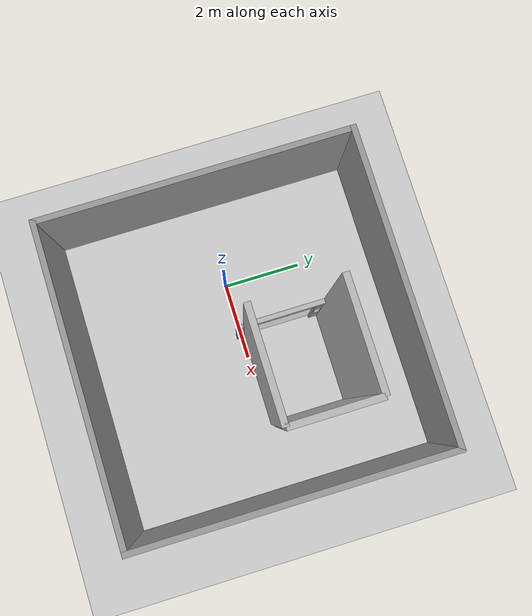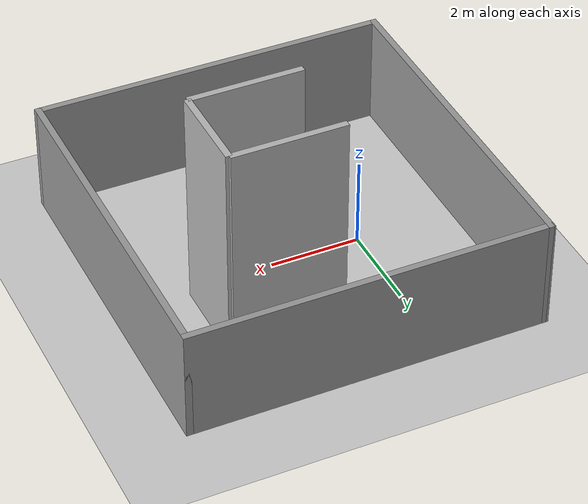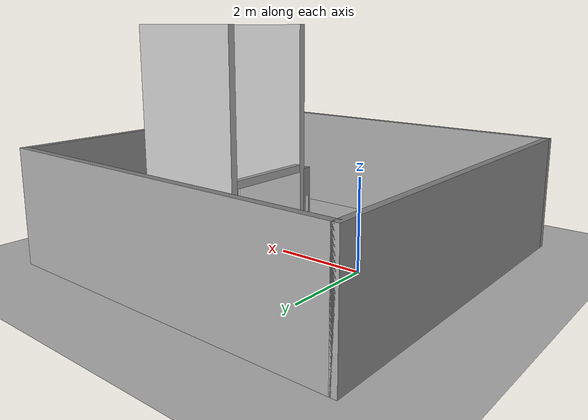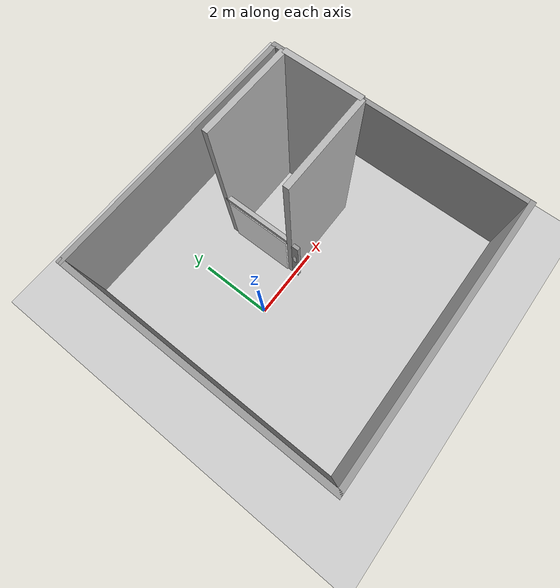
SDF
<sdf version="1.6">
 <world name="default">
  <light name="sun" type="directional">
   <pose>0 0 10 0 -0 0</pose>
   <diffuse>0.8 0.8 0.8 1</diffuse>
   <specular>0.2 0.2 0.2 1</specular>
   <attenuation>
    <range>1000</range>
    <constant>0.9</constant>
    <linear>0.01</linear>
    <quadratic>0.001</quadratic>
   </attenuation>
   <direction>-0.5 0.1 -0.9</direction>
  </light>
  <model name="ground_plane">
   <static>1</static>
   <link name="link">
    <collision name="collision">
     <geometry><plane><normal>0 0 1</normal><size>100 100</size></plane></geometry>
     <surface><friction><ode><mu>100</mu><mu2>50</mu2></ode></friction></surface>
    </collision>
    <visual name="visual">
     <cast_shadows>0</cast_shadows>
     <geometry><plane><normal>0 0 1</normal><size>100 100</size></plane></geometry>
     <material>
      <script><uri>file://media/materials/scripts/gazebo.material</uri><name>Gazebo/Grey</name></script>
     </material>
    </visual>
   </link>
  </model>
  <gravity>0 0 -9.8</gravity>
  <magnetic_field>6e-06 2.3e-05 -4.2e-05</magnetic_field>
  <atmosphere type="adiabatic"/>
  <physics name="default_physics" default="0" type="ode">
   <max_step_size>0.001</max_step_size>
   <real_time_factor>1</real_time_factor>
   <real_time_update_rate>1000</real_time_update_rate>
  </physics>
  <scene><ambient>0.4 0.4 0.4 1</ambient><background>0.7 0.7 0.7 1</background><shadows>1</shadows></scene>
  <spherical_coordinates>
   <surface_model>EARTH_WGS84</surface_model>
   <latitude_deg>0</latitude_deg>
   <longitude_deg>0</longitude_deg>
   <elevation>0</elevation>
   <heading_deg>0</heading_deg>
  </spherical_coordinates>
  <model name="8m_cube_wall">
   <pose>1.64088 -0.013591 0 0 -0 0</pose>
   <link name="Wall_3">
    <collision name="Wall_3_Collision">
     <geometry><box><size>8 0.15 2.5</size></box></geometry>
     <pose>0 0 1.25 0 -0 0</pose>
    </collision>
    <visual name="Wall_3_Visual">
     <pose>0 0 1.25 0 -0 0</pose>
     <geometry><box><size>8 0.15 2.5</size></box></geometry>
     <material>
      <script><uri>file://media/materials/scripts/gazebo.material</uri><name>Gazebo/Grey</name></script>
      <ambient>1 1 1 1</ambient>
     </material>
     <meta><layer>0</layer></meta>
    </visual>
    <pose>-3.925 0 0 0 -0 1.5708</pose>
   </link>
   <link name="Wall_4">
    <collision name="Wall_4_Collision">
     <geometry><box><size>8 0.15 2.5</size></box></geometry>
     <pose>0 0 1.25 0 -0 0</pose>
    </collision>
    <visual name="Wall_4_Visual">
     <pose>0 0 1.25 0 -0 0</pose>
     <geometry><box><size>8 0.15 2.5</size></box></geometry>
     <material>
      <script><uri>file://media/materials/scripts/gazebo.material</uri><name>Gazebo/Grey</name></script>
      <ambient>1 1 1 1</ambient>
     </material>
     <meta><layer>0</layer></meta>
    </visual>
    <pose>0 3.925 0 0 -0 0</pose>
   </link>
   <link name="Wall_5">
    <collision name="Wall_5_Collision">
     <geometry><box><size>8 0.15 2.5</size></box></geometry>
     <pose>0 0 1.25 0 -0 0</pose>
    </collision>
    <visual name="Wall_5_Visual">
     <pose>0 0 1.25 0 -0 0</pose>
     <geometry><box><size>8 0.15 2.5</size></box></geometry>
     <material>
      <script><uri>file://media/materials/scripts/gazebo.material</uri><name>Gazebo/Grey</name></script>
      <ambient>1 1 1 1</ambient>
     </material>
     <meta><layer>0</layer></meta>
    </visual>
    <pose>3.925 0 0 0 0 -1.5708</pose>
   </link>
   <link name="Wall_6">
    <collision name="Wall_6_Collision">
     <geometry><box><size>8 0.15 2.5</size></box></geometry>
     <pose>0 0 1.25 0 -0 0</pose>
    </collision>
    <visual name="Wall_6_Visual">
     <pose>0 0 1.25 0 -0 0</pose>
     <geometry><box><size>8 0.15 2.5</size></box></geometry>
     <material>
      <script><uri>file://media/materials/scripts/gazebo.material</uri><name>Gazebo/Grey</name></script>
      <ambient>1 1 1 1</ambient>
     </material>
     <meta><layer>0</layer></meta>
    </visual>
    <pose>0 -3.925 0 0 -0 3.14159</pose>
   </link>
   <static>1</static>
  </model>
  <model name="elevator_door">
   <link name="link">
    <pose>0.086726 -0.429033 0.450416 0 -0 0</pose>
    <inertial>
     <mass>1</mass>
     <inertia>
      <ixx>0.166667</ixx>
      <ixy>0</ixy>
      <ixz>0</ixz>
      <iyy>0.166667</iyy>
      <iyz>0</iyz>
      <izz>0.166667</izz>
     </inertia>
     <pose>0 0 0.5 0 -0 0</pose>
    </inertial>
    <visual name="visual">
     <geometry><box><size>1.8 0.05 2</size></box></geometry>
     <material>
      <script>
       <uri>model://elevator_door/materials/scripts</uri>
       <uri>model://elevator_door/materials/textures</uri>
       <name>Elevator_door/Picture</name>
      </script>
      <shader type="pixel"><normal_map>__default__</normal_map></shader>
      <ambient>1 1 1 1</ambient>
      <diffuse>1 1 1 1</diffuse>
      <specular>0 0 0 1</specular>
      <emissive>0 0 0 1</emissive>
     </material>
     <pose>0 0 0.5 0 -0 0</pose>
    </visual>
    <collision name="collision">
     <pose>0 0 0.5 0 -0 0</pose>
     <geometry><box><size>1.8 0.05 2</size></box></geometry>
     <surface>
      <friction>
       <ode><mu>1</mu><mu2>1</mu2><fdir1>0 0 0</fdir1><slip1>0</slip1><slip2>0</slip2></ode>
       <torsional>
        <coefficient>1</coefficient>
        <patch_radius>0</patch_radius>
        <surface_radius>0</surface_radius>
        <use_patch_radius>1</use_patch_radius>
        <ode><slip>0</slip></ode>
       </torsional>
      </friction>
      <bounce><restitution_coefficient>0</restitution_coefficient><threshold>1e+06</threshold></bounce>
      <contact>
       <collide_without_contact>0</collide_without_contact>
       <collide_without_contact_bitmask>1</collide_without_contact_bitmask>
       <collide_bitmask>1</collide_bitmask>
       <ode>
        <soft_cfm>0</soft_cfm>
        <soft_erp>0.2</soft_erp>
        <kp>1e+13</kp>
        <kd>1</kd>
        <max_vel>0.01</max_vel>
        <min_depth>0</min_depth>
       </ode>
       <bullet>
        <split_impulse>1</split_impulse>
        <split_impulse_penetration_threshold>-0.01</split_impulse_penetration_threshold>
        <soft_cfm>0</soft_cfm>
        <soft_erp>0.2</soft_erp>
        <kp>1e+13</kp>
        <kd>1</kd>
       </bullet>
      </contact>
     </surface>
    </collision>
   </link>
   <static>1</static>
   <pose>0.926039 1.0459 0 0 -0 1.5707</pose>
  </model>
  <model name="elevator_shaft">
   <link name="elevator_shaft">
    <pose>-1.72355 0.224232 0 0 0 -1.5708</pose>
    <inertial>
     <mass>1</mass>
     <inertia><ixx>1</ixx><ixy>0</ixy><ixz>0</ixz><iyy>1</iyy><iyz>0</iyz><izz>1</izz></inertia>
    </inertial>
    <visual name="shaft_wall3_visual">
     <pose>-1.25 0 2.4774 0 -0 0</pose>
     <geometry><box><size>0.15 2 4.95479</size></box></geometry>
     <material><shader type="pixel"><normal_map>__default__</normal_map></shader></material>
    </visual>
    <visual name="shaft_wall2_visual">
     <pose>0 -1 2.4774 0 -0 0</pose>
     <geometry><box><size>2.5 0.15 4.95479</size></box></geometry>
     <material><shader type="pixel"><normal_map>__default__</normal_map></shader></material>
    </visual>
    <visual name="shaft_wall1_visual">
     <pose>0 1 2.4774 0 -0 0</pose>
     <geometry><box><size>2.5 0.15 4.95479</size></box></geometry>
     <material><shader type="pixel"><normal_map>__default__</normal_map></shader></material>
    </visual>
    <visual name="floor1_visual">
     <pose>1.19 0 2 0 -0 0</pose>
     <geometry><box><size>0.12 2 0.2</size></box></geometry>
     <material><shader type="pixel"><normal_map>__default__</normal_map></shader></material>
    </visual>
    <collision name="floor1_collision">
     <pose>1.19 0 2 0 -0 0</pose>
     <geometry><box><size>0.12 2 0.2</size></box></geometry>
     <surface>
      <friction>
       <ode><mu>1</mu><mu2>1</mu2><fdir1>0 0 0</fdir1><slip1>0</slip1><slip2>0</slip2></ode>
       <torsional>
        <coefficient>1</coefficient>
        <patch_radius>0</patch_radius>
        <surface_radius>0</surface_radius>
        <use_patch_radius>1</use_patch_radius>
        <ode><slip>0</slip></ode>
       </torsional>
      </friction>
      <bounce><restitution_coefficient>0</restitution_coefficient><threshold>1e+06</threshold></bounce>
      <contact>
       <collide_without_contact>0</collide_without_contact>
       <collide_without_contact_bitmask>1</collide_without_contact_bitmask>
       <collide_bitmask>1</collide_bitmask>
       <ode>
        <soft_cfm>0</soft_cfm>
        <soft_erp>0.2</soft_erp>
        <kp>1e+13</kp>
        <kd>1</kd>
        <max_vel>0.01</max_vel>
        <min_depth>0</min_depth>
       </ode>
       <bullet>
        <split_impulse>1</split_impulse>
        <split_impulse_penetration_threshold>-0.01</split_impulse_penetration_threshold>
        <soft_cfm>0</soft_cfm>
        <soft_erp>0.2</soft_erp>
        <kp>1e+13</kp>
        <kd>1</kd>
       </bullet>
      </contact>
     </surface>
    </collision>
    <collision name="shaft_wall3_collision">
     <pose>-1.25 0 2.4774 0 -0 0</pose>
     <geometry><box><size>0.15 2 4.95479</size></box></geometry>
     <surface>
      <friction>
       <ode><mu>1</mu><mu2>1</mu2><fdir1>0 0 0</fdir1><slip1>0</slip1><slip2>0</slip2></ode>
       <torsional>
        <coefficient>1</coefficient>
        <patch_radius>0</patch_radius>
        <surface_radius>0</surface_radius>
        <use_patch_radius>1</use_patch_radius>
        <ode><slip>0</slip></ode>
       </torsional>
      </friction>
      <bounce><restitution_coefficient>0</restitution_coefficient><threshold>1e+06</threshold></bounce>
      <contact>
       <collide_without_contact>0</collide_without_contact>
       <collide_without_contact_bitmask>1</collide_without_contact_bitmask>
       <collide_bitmask>1</collide_bitmask>
       <ode>
        <soft_cfm>0</soft_cfm>
        <soft_erp>0.2</soft_erp>
        <kp>1e+13</kp>
        <kd>1</kd>
        <max_vel>0.01</max_vel>
        <min_depth>0</min_depth>
       </ode>
       <bullet>
        <split_impulse>1</split_impulse>
        <split_impulse_penetration_threshold>-0.01</split_impulse_penetration_threshold>
        <soft_cfm>0</soft_cfm>
        <soft_erp>0.2</soft_erp>
        <kp>1e+13</kp>
        <kd>1</kd>
       </bullet>
      </contact>
     </surface>
    </collision>
    <collision name="shaft_wall2_collision">
     <pose>0 -1 2.4774 0 -0 0</pose>
     <geometry><box><size>2.5 0.15 4.95479</size></box></geometry>
     <surface>
      <friction>
       <ode><mu>1</mu><mu2>1</mu2><fdir1>0 0 0</fdir1><slip1>0</slip1><slip2>0</slip2></ode>
       <torsional>
        <coefficient>1</coefficient>
        <patch_radius>0</patch_radius>
        <surface_radius>0</surface_radius>
        <use_patch_radius>1</use_patch_radius>
        <ode><slip>0</slip></ode>
       </torsional>
      </friction>
      <bounce><restitution_coefficient>0</restitution_coefficient><threshold>1e+06</threshold></bounce>
      <contact>
       <collide_without_contact>0</collide_without_contact>
       <collide_without_contact_bitmask>1</collide_without_contact_bitmask>
       <collide_bitmask>1</collide_bitmask>
       <ode>
        <soft_cfm>0</soft_cfm>
        <soft_erp>0.2</soft_erp>
        <kp>1e+13</kp>
        <kd>1</kd>
        <max_vel>0.01</max_vel>
        <min_depth>0</min_depth>
       </ode>
       <bullet>
        <split_impulse>1</split_impulse>
        <split_impulse_penetration_threshold>-0.01</split_impulse_penetration_threshold>
        <soft_cfm>0</soft_cfm>
        <soft_erp>0.2</soft_erp>
        <kp>1e+13</kp>
        <kd>1</kd>
       </bullet>
      </contact>
     </surface>
    </collision>
    <collision name="shaft_wall1_collision">
     <pose>0 1 2.4774 0 -0 0</pose>
     <geometry><box><size>2.5 0.15 4.95479</size></box></geometry>
     <surface>
      <friction>
       <ode><mu>1</mu><mu2>1</mu2><fdir1>0 0 0</fdir1><slip1>0</slip1><slip2>0</slip2></ode>
       <torsional>
        <coefficient>1</coefficient>
        <patch_radius>0</patch_radius>
        <surface_radius>0</surface_radius>
        <use_patch_radius>1</use_patch_radius>
        <ode><slip>0</slip></ode>
       </torsional>
      </friction>
      <bounce><restitution_coefficient>0</restitution_coefficient><threshold>1e+06</threshold></bounce>
      <contact>
       <collide_without_contact>0</collide_without_contact>
       <collide_without_contact_bitmask>1</collide_without_contact_bitmask>
       <collide_bitmask>1</collide_bitmask>
       <ode>
        <soft_cfm>0</soft_cfm>
        <soft_erp>0.2</soft_erp>
        <kp>1e+13</kp>
        <kd>1</kd>
        <max_vel>0.01</max_vel>
        <min_depth>0</min_depth>
       </ode>
       <bullet>
        <split_impulse>1</split_impulse>
        <split_impulse_penetration_threshold>-0.01</split_impulse_penetration_threshold>
        <soft_cfm>0</soft_cfm>
        <soft_erp>0.2</soft_erp>
        <kp>1e+13</kp>
        <kd>1</kd>
       </bullet>
      </contact>
     </surface>
    </collision>
   </link>
   <link name="buttons_link">
    <pose>-0.5624 -1.03258 1.29659 0 -0 0</pose>
    <inertial>
     <mass>1</mass>
     <inertia>
      <ixx>0.166667</ixx>
      <ixy>0</ixy>
      <ixz>0</ixz>
      <iyy>0.166667</iyy>
      <iyz>0</iyz>
      <izz>0.166667</izz>
     </inertia>
    </inertial>
    <visual name="visual">
     <pose>0 0 -0.08 0 -0 0</pose>
     <geometry><box><size>0.09 0.01 0.36</size></box></geometry>
     <material>
      <script>
       <uri>model://elevator_shaft/materials/scripts</uri>
       <uri>model://elevator_shaft/materials/textures</uri>
       <name>Up_down/Diffuse</name>
      </script>
      <shader type="pixel"><normal_map>__default__</normal_map></shader>
      <ambient>1 1 1 1</ambient>
      <diffuse>1 1 1 1</diffuse>
      <specular>0 0 0 1</specular>
      <emissive>0 0 0 1</emissive>
     </material>
    </visual>
    <collision name="collision">
     <pose>0 0 -0.08 0 -0 0</pose>
     <geometry><box><size>0.09 0.01 0.36</size></box></geometry>
     <surface>
      <friction>
       <ode><mu>1</mu><mu2>1</mu2><fdir1>0 0 0</fdir1><slip1>0</slip1><slip2>0</slip2></ode>
       <torsional>
        <coefficient>1</coefficient>
        <patch_radius>0</patch_radius>
        <surface_radius>0</surface_radius>
        <use_patch_radius>1</use_patch_radius>
        <ode><slip>0</slip></ode>
       </torsional>
      </friction>
      <bounce><restitution_coefficient>0</restitution_coefficient><threshold>1e+06</threshold></bounce>
      <contact>
       <collide_without_contact>0</collide_without_contact>
       <collide_without_contact_bitmask>1</collide_without_contact_bitmask>
       <collide_bitmask>1</collide_bitmask>
       <ode>
        <soft_cfm>0</soft_cfm>
        <soft_erp>0.2</soft_erp>
        <kp>1e+13</kp>
        <kd>1</kd>
        <max_vel>0.01</max_vel>
        <min_depth>0</min_depth>
       </ode>
       <bullet>
        <split_impulse>1</split_impulse>
        <split_impulse_penetration_threshold>-0.01</split_impulse_penetration_threshold>
        <soft_cfm>0</soft_cfm>
        <soft_erp>0.2</soft_erp>
        <kp>1e+13</kp>
        <kd>1</kd>
       </bullet>
      </contact>
     </surface>
    </collision>
   </link>
   <link name="buttons_panel">
    <pose>-2.536 -0.918894 1.1 0 -0 1.59011</pose>
    <inertial>
     <mass>1</mass>
     <inertia>
      <ixx>0.166667</ixx>
      <ixy>0</ixy>
      <ixz>0</ixz>
      <iyy>0.166667</iyy>
      <iyz>0</iyz>
      <izz>0.166667</izz>
     </inertia>
     <pose>0 0 0 0 -0 1.57</pose>
    </inertial>
    <visual name="visual">
     <pose>0 0 0 0 -0 1.57</pose>
     <geometry><box><size>0.15 0.01 0.5</size></box></geometry>
     <material>
      <script>
       <uri>model://elevator_shaft/materials/scripts</uri>
       <uri>model://elevator_shaft/materials/textures</uri>
       <name>Buttons_panel/Picture</name>
      </script>
      <shader type="pixel"><normal_map>__default__</normal_map></shader>
      <ambient>1 1 1 1</ambient>
      <diffuse>1 1 1 1</diffuse>
      <specular>0 0 0 1</specular>
      <emissive>0 0 0 1</emissive>
     </material>
    </visual>
    <collision name="collision">
     <pose>0 0 0 0 -0 1.57</pose>
     <geometry><box><size>0.15 0.01 0.5</size></box></geometry>
     <surface>
      <friction>
       <ode><mu>1</mu><mu2>1</mu2><fdir1>0 0 0</fdir1><slip1>0</slip1><slip2>0</slip2></ode>
       <torsional>
        <coefficient>1</coefficient>
        <patch_radius>0</patch_radius>
        <surface_radius>0</surface_radius>
        <use_patch_radius>1</use_patch_radius>
        <ode><slip>0</slip></ode>
       </torsional>
      </friction>
      <bounce><restitution_coefficient>0</restitution_coefficient><threshold>1e+06</threshold></bounce>
      <contact>
       <collide_without_contact>0</collide_without_contact>
       <collide_without_contact_bitmask>1</collide_without_contact_bitmask>
       <collide_bitmask>1</collide_bitmask>
       <ode>
        <soft_cfm>0</soft_cfm>
        <soft_erp>0.2</soft_erp>
        <kp>1e+13</kp>
        <kd>1</kd>
        <max_vel>0.01</max_vel>
        <min_depth>0</min_depth>
       </ode>
       <bullet>
        <split_impulse>1</split_impulse>
        <split_impulse_penetration_threshold>-0.01</split_impulse_penetration_threshold>
        <soft_cfm>0</soft_cfm>
        <soft_erp>0.2</soft_erp>
        <kp>1e+13</kp>
        <kd>1</kd>
       </bullet>
      </contact>
     </surface>
    </collision>
   </link>
   <link name="link_0">
    <pose>-0.562882 -0.977907 1.0001 0 -0 0</pose>
    <inertial>
     <mass>1</mass>
     <inertia>
      <ixx>0.166667</ixx>
      <ixy>0</ixy>
      <ixz>0</ixz>
      <iyy>0.166667</iyy>
      <iyz>0</iyz>
      <izz>0.166667</izz>
     </inertia>
    </inertial>
    <visual name="visual">
     <geometry><box><size>0.2 0.1 2</size></box></geometry>
     <material>
      <lighting>1</lighting>
      <script><uri>file://media/materials/scripts/gazebo.material</uri><name>Gazebo/Grey</name></script>
      <shader type="pixel"><normal_map>__default__</normal_map></shader>
      <ambient>0.3 0.3 0.3 1</ambient>
      <diffuse>0.7 0.7 0.7 1</diffuse>
      <specular>0.01 0.01 0.01 1</specular>
      <emissive>0 0 0 1</emissive>
     </material>
    </visual>
    <collision name="collision">
     <geometry><box><size>0.2 0.1 2</size></box></geometry>
     <surface>
      <friction>
       <ode><mu>1</mu><mu2>1</mu2><fdir1>0 0 0</fdir1><slip1>0</slip1><slip2>0</slip2></ode>
       <torsional>
        <coefficient>1</coefficient>
        <patch_radius>0</patch_radius>
        <surface_radius>0</surface_radius>
        <use_patch_radius>1</use_patch_radius>
        <ode><slip>0</slip></ode>
       </torsional>
      </friction>
      <bounce><restitution_coefficient>0</restitution_coefficient><threshold>1e+06</threshold></bounce>
      <contact>
       <collide_without_contact>0</collide_without_contact>
       <collide_without_contact_bitmask>1</collide_without_contact_bitmask>
       <collide_bitmask>1</collide_bitmask>
       <ode>
        <soft_cfm>0</soft_cfm>
        <soft_erp>0.2</soft_erp>
        <kp>1e+13</kp>
        <kd>1</kd>
        <max_vel>0.01</max_vel>
        <min_depth>0</min_depth>
       </ode>
       <bullet>
        <split_impulse>1</split_impulse>
        <split_impulse_penetration_threshold>-0.01</split_impulse_penetration_threshold>
        <soft_cfm>0</soft_cfm>
        <soft_erp>0.2</soft_erp>
        <kp>1e+13</kp>
        <kd>1</kd>
       </bullet>
      </contact>
     </surface>
    </collision>
   </link>
   <link name="link_0_clone">
    <pose>-2.54905 -0.975314 1.0001 0 0 -3.13859</pose>
    <inertial>
     <mass>1</mass>
     <inertia>
      <ixx>0.166667</ixx>
      <ixy>0</ixy>
      <ixz>0</ixz>
      <iyy>0.166667</iyy>
      <iyz>0</iyz>
      <izz>0.166667</izz>
     </inertia>
    </inertial>
    <visual name="visual">
     <geometry><box><size>0.22 0.1 2</size></box></geometry>
     <material>
      <lighting>1</lighting>
      <script><uri>file://media/materials/scripts/gazebo.material</uri><name>Gazebo/Grey</name></script>
      <shader type="pixel"><normal_map>__default__</normal_map></shader>
      <ambient>0.3 0.3 0.3 1</ambient>
      <diffuse>0.7 0.7 0.7 1</diffuse>
      <specular>0.01 0.01 0.01 1</specular>
      <emissive>0 0 0 1</emissive>
     </material>
    </visual>
    <collision name="collision">
     <geometry><box><size>0.22 0.1 2</size></box></geometry>
     <surface>
      <friction>
       <ode><mu>1</mu><mu2>1</mu2><fdir1>0 0 0</fdir1><slip1>0</slip1><slip2>0</slip2></ode>
       <torsional>
        <coefficient>1</coefficient>
        <patch_radius>0</patch_radius>
        <surface_radius>0</surface_radius>
        <use_patch_radius>1</use_patch_radius>
        <ode><slip>0</slip></ode>
       </torsional>
      </friction>
      <bounce><restitution_coefficient>0</restitution_coefficient><threshold>1e+06</threshold></bounce>
      <contact>
       <collide_without_contact>0</collide_without_contact>
       <collide_without_contact_bitmask>1</collide_without_contact_bitmask>
       <collide_bitmask>1</collide_bitmask>
       <ode>
        <soft_cfm>0</soft_cfm>
        <soft_erp>0.2</soft_erp>
        <kp>1e+13</kp>
        <kd>1</kd>
        <max_vel>0.01</max_vel>
        <min_depth>0</min_depth>
       </ode>
       <bullet>
        <split_impulse>1</split_impulse>
        <split_impulse_penetration_threshold>-0.01</split_impulse_penetration_threshold>
        <soft_cfm>0</soft_cfm>
        <soft_erp>0.2</soft_erp>
        <kp>1e+13</kp>
        <kd>1</kd>
       </bullet>
      </contact>
     </surface>
    </collision>
   </link>
   <static>1</static>
   <pose>2.38191 -0.582251 0 0 0 -1.56913</pose>
  </model>
 </world>
</sdf>
